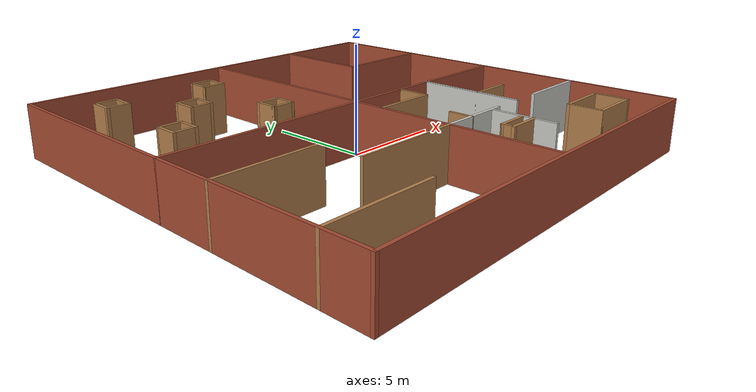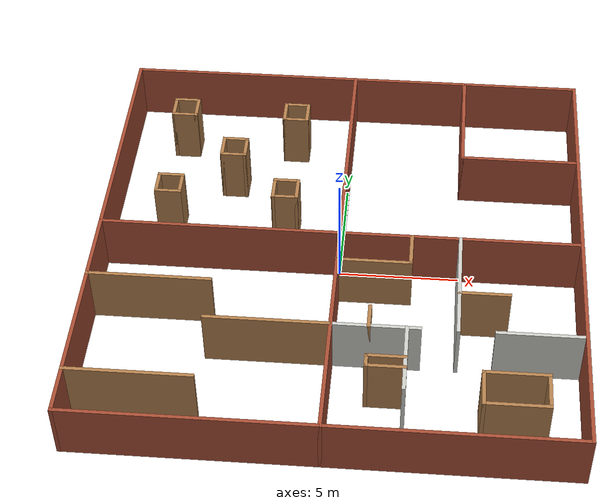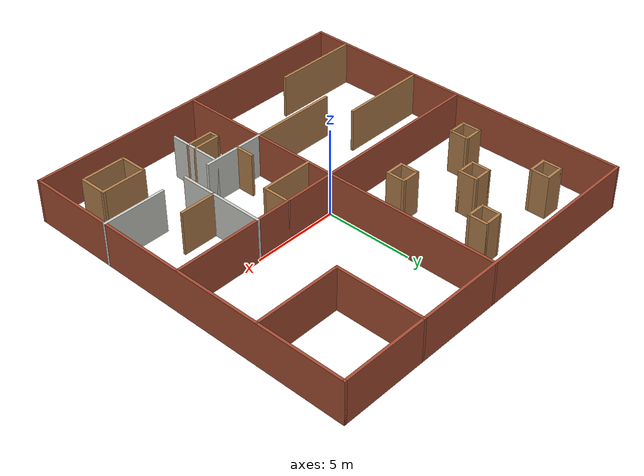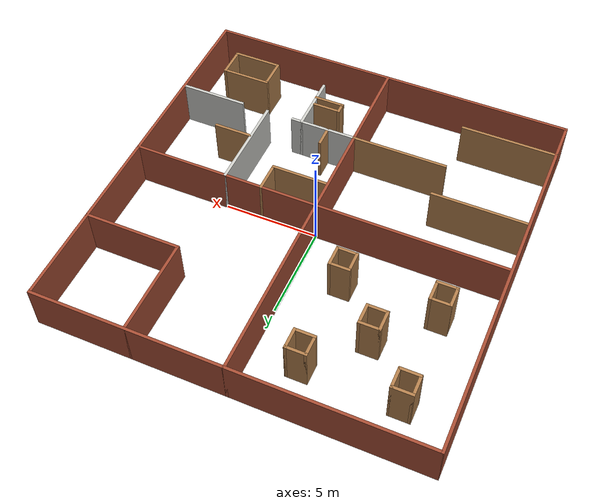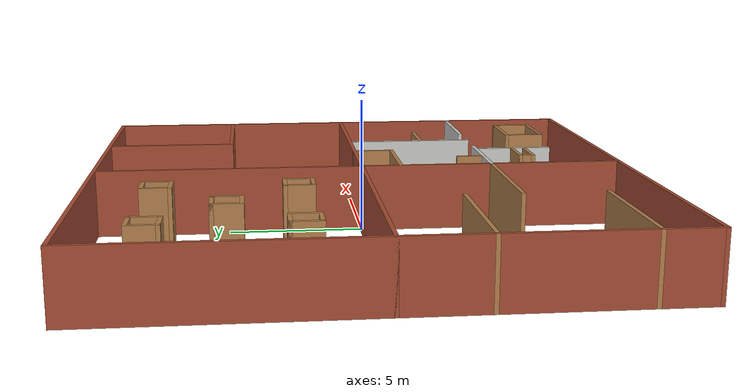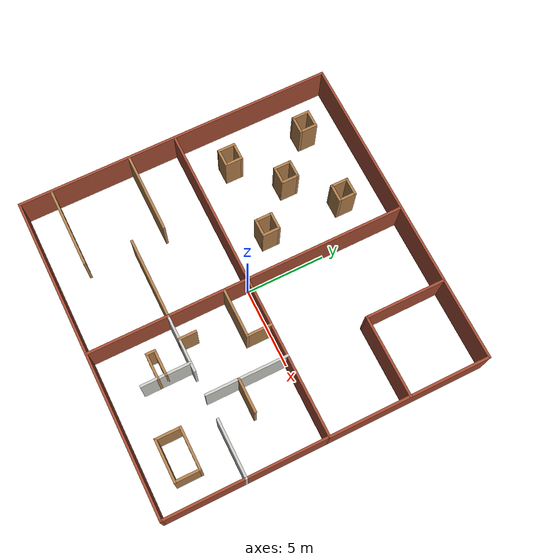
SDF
<?xml version='1.0'?>
<sdf version='1.6'>
  <model name='Room_Curriculum'>
    <pose frame=''>0 0 0 0 -0 0</pose>
    <link name='Wall_0'>
      <collision name='Wall_0_Collision'>
        <geometry>
          <box>
            <size>20.15 0.15 2.5</size>
          </box>
        </geometry>
        <pose frame=''>0 0 1.25 0 -0 0</pose>
      </collision>
      <visual name='Wall_0_Visual'>
        <pose frame=''>0 0 1.25 0 -0 0</pose>
        <geometry>
          <box>
            <size>20.15 0.15 2.5</size>
          </box>
        </geometry>
        <material>
          <script>
            <uri>file://media/materials/scripts/gazebo.material</uri>
            <name>Gazebo/Bricks</name>
          </script>
          <ambient>1 1 1 1</ambient>
        </material>
        <meta>
          <layer>0</layer>
        </meta>
      </visual>
      <pose frame=''>0 10 0 0 -0 0</pose>
    </link>
    <link name='Wall_1'>
      <collision name='Wall_1_Collision'>
        <geometry>
          <box>
            <size>20.15 0.15 2.5</size>
          </box>
        </geometry>
        <pose frame=''>0 0 1.25 0 -0 0</pose>
      </collision>
      <visual name='Wall_1_Visual'>
        <pose frame=''>0 0 1.25 0 -0 0</pose>
        <geometry>
          <box>
            <size>20.15 0.15 2.5</size>
          </box>
        </geometry>
        <material>
          <script>
            <uri>file://media/materials/scripts/gazebo.material</uri>
            <name>Gazebo/Bricks</name>
          </script>
          <ambient>1 1 1 1</ambient>
        </material>
        <meta>
          <layer>0</layer>
        </meta>
      </visual>
      <pose frame=''>10 0 0 0 0 -1.5708</pose>
    </link>
    <link name='Wall_15'>
      <collision name='Wall_15_Collision'>
        <geometry>
          <box>
            <size>5.15 0.15 2.5</size>
          </box>
        </geometry>
        <pose frame=''>0 0 1.25 0 -0 0</pose>
      </collision>
      <visual name='Wall_15_Visual'>
        <pose frame=''>0 0 1.25 0 -0 0</pose>
        <geometry>
          <box>
            <size>5.15 0.15 2.5</size>
          </box>
        </geometry>
        <material>
          <script>
            <uri>file://media/materials/scripts/gazebo.material</uri>
            <name>Gazebo/Bricks</name>
          </script>
          <ambient>1 1 1 1</ambient>
        </material>
        <meta>
          <layer>0</layer>
        </meta>
      </visual>
      <pose frame=''>5 7.5 0 0 0 -1.5708</pose>
    </link>
    <link name='Wall_16'>
      <collision name='Wall_16_Collision'>
        <geometry>
          <box>
            <size>5.15 0.15 2.5</size>
          </box>
        </geometry>
        <pose frame=''>0 0 1.25 0 -0 0</pose>
      </collision>
      <visual name='Wall_16_Visual'>
        <pose frame=''>0 0 1.25 0 -0 0</pose>
        <geometry>
          <box>
            <size>5.15 0.15 2.5</size>
          </box>
        </geometry>
        <material>
          <script>
            <uri>file://media/materials/scripts/gazebo.material</uri>
            <name>Gazebo/Bricks</name>
          </script>
          <ambient>1 1 1 1</ambient>
        </material>
        <meta>
          <layer>0</layer>
        </meta>
      </visual>
      <pose frame=''>7.5 5 0 0 -0 0</pose>
    </link>
    <link name='Wall_18'>
      <collision name='Wall_18_Collision'>
        <geometry>
          <box>
            <size>1.15 0.15 2.5</size>
          </box>
        </geometry>
        <pose frame=''>0 0 1.25 0 -0 0</pose>
      </collision>
      <visual name='Wall_18_Visual'>
        <pose frame=''>0 0 1.25 0 -0 0</pose>
        <geometry>
          <box>
            <size>1.15 0.15 2.5</size>
          </box>
        </geometry>
        <material>
          <script>
            <uri>file://media/materials/scripts/gazebo.material</uri>
            <name>Gazebo/Wood</name>
          </script>
          <ambient>1 1 1 1</ambient>
        </material>
        <meta>
          <layer>0</layer>
        </meta>
      </visual>
      <pose frame=''>-7.5 8 0 0 -0 0</pose>
    </link>
    <link name='Wall_19'>
      <collision name='Wall_19_Collision'>
        <geometry>
          <box>
            <size>1.15 0.15 2.5</size>
          </box>
        </geometry>
        <pose frame=''>0 0 1.25 0 -0 0</pose>
      </collision>
      <visual name='Wall_19_Visual'>
        <pose frame=''>0 0 1.25 0 -0 0</pose>
        <geometry>
          <box>
            <size>1.15 0.15 2.5</size>
          </box>
        </geometry>
        <material>
          <script>
            <uri>file://media/materials/scripts/gazebo.material</uri>
            <name>Gazebo/Wood</name>
          </script>
          <ambient>1 1 1 1</ambient>
        </material>
        <meta>
          <layer>0</layer>
        </meta>
      </visual>
      <pose frame=''>-7 7.5 0 0 0 -1.5708</pose>
    </link>
    <link name='Wall_2'>
      <collision name='Wall_2_Collision'>
        <geometry>
          <box>
            <size>20.15 0.15 2.5</size>
          </box>
        </geometry>
        <pose frame=''>0 0 1.25 0 -0 0</pose>
      </collision>
      <visual name='Wall_2_Visual'>
        <pose frame=''>0 0 1.25 0 -0 0</pose>
        <geometry>
          <box>
            <size>20.15 0.15 2.5</size>
          </box>
        </geometry>
        <material>
          <script>
            <uri>file://media/materials/scripts/gazebo.material</uri>
            <name>Gazebo/Bricks</name>
          </script>
          <ambient>1 1 1 1</ambient>
        </material>
        <meta>
          <layer>0</layer>
        </meta>
      </visual>
      <pose frame=''>0 -10 0 0 -0 3.14159</pose>
    </link>
    <link name='Wall_20'>
      <collision name='Wall_20_Collision'>
        <geometry>
          <box>
            <size>1.15 0.15 2.5</size>
          </box>
        </geometry>
        <pose frame=''>0 0 1.25 0 -0 0</pose>
      </collision>
      <visual name='Wall_20_Visual'>
        <pose frame=''>0 0 1.25 0 -0 0</pose>
        <geometry>
          <box>
            <size>1.15 0.15 2.5</size>
          </box>
        </geometry>
        <material>
          <script>
            <uri>file://media/materials/scripts/gazebo.material</uri>
            <name>Gazebo/Wood</name>
          </script>
          <ambient>1 1 1 1</ambient>
        </material>
        <meta>
          <layer>0</layer>
        </meta>
      </visual>
      <pose frame=''>-7.5 7 0 0 -0 3.14159</pose>
    </link>
    <link name='Wall_21'>
      <collision name='Wall_21_Collision'>
        <geometry>
          <box>
            <size>1.15 0.15 2.5</size>
          </box>
        </geometry>
        <pose frame=''>0 0 1.25 0 -0 0</pose>
      </collision>
      <visual name='Wall_21_Visual'>
        <pose frame=''>0 0 1.25 0 -0 0</pose>
        <geometry>
          <box>
            <size>1.15 0.15 2.5</size>
          </box>
        </geometry>
        <material>
          <script>
            <uri>file://media/materials/scripts/gazebo.material</uri>
            <name>Gazebo/Wood</name>
          </script>
          <ambient>1 1 1 1</ambient>
        </material>
        <meta>
          <layer>0</layer>
        </meta>
      </visual>
      <pose frame=''>-8 7.5 0 0 -0 1.5708</pose>
    </link>
    <link name='Wall_23'>
      <collision name='Wall_23_Collision'>
        <geometry>
          <box>
            <size>1.15 0.15 2.5</size>
          </box>
        </geometry>
        <pose frame=''>0 0 1.25 0 -0 0</pose>
      </collision>
      <visual name='Wall_23_Visual'>
        <pose frame=''>0 0 1.25 0 -0 0</pose>
        <geometry>
          <box>
            <size>1.15 0.15 2.5</size>
          </box>
        </geometry>
        <material>
          <script>
            <uri>file://media/materials/scripts/gazebo.material</uri>
            <name>Gazebo/Wood</name>
          </script>
          <ambient>1 1 1 1</ambient>
        </material>
        <meta>
          <layer>0</layer>
        </meta>
      </visual>
      <pose frame=''>-5.5 5 0 0 0 -1.5708</pose>
    </link>
    <link name='Wall_24'>
      <collision name='Wall_24_Collision'>
        <geometry>
          <box>
            <size>1.15 0.15 2.5</size>
          </box>
        </geometry>
        <pose frame=''>0 0 1.25 0 -0 0</pose>
      </collision>
      <visual name='Wall_24_Visual'>
        <pose frame=''>0 0 1.25 0 -0 0</pose>
        <geometry>
          <box>
            <size>1.15 0.15 2.5</size>
          </box>
        </geometry>
        <material>
          <script>
            <uri>file://media/materials/scripts/gazebo.material</uri>
            <name>Gazebo/Wood</name>
          </script>
          <ambient>1 1 1 1</ambient>
        </material>
        <meta>
          <layer>0</layer>
        </meta>
      </visual>
      <pose frame=''>-5 4.5 0 0 -0 0</pose>
    </link>
    <link name='Wall_25'>
      <collision name='Wall_25_Collision'>
        <geometry>
          <box>
            <size>1.15 0.15 2.5</size>
          </box>
        </geometry>
        <pose frame=''>0 0 1.25 0 -0 0</pose>
      </collision>
      <visual name='Wall_25_Visual'>
        <pose frame=''>0 0 1.25 0 -0 0</pose>
        <geometry>
          <box>
            <size>1.15 0.15 2.5</size>
          </box>
        </geometry>
        <material>
          <script>
            <uri>file://media/materials/scripts/gazebo.material</uri>
            <name>Gazebo/Wood</name>
          </script>
          <ambient>1 1 1 1</ambient>
        </material>
        <meta>
          <layer>0</layer>
        </meta>
      </visual>
      <pose frame=''>-4.5 5 0 0 -0 1.5708</pose>
    </link>
    <link name='Wall_26'>
      <collision name='Wall_26_Collision'>
        <geometry>
          <box>
            <size>1.15 0.15 2.5</size>
          </box>
        </geometry>
        <pose frame=''>0 0 1.25 0 -0 0</pose>
      </collision>
      <visual name='Wall_26_Visual'>
        <pose frame=''>0 0 1.25 0 -0 0</pose>
        <geometry>
          <box>
            <size>1.15 0.15 2.5</size>
          </box>
        </geometry>
        <material>
          <script>
            <uri>file://media/materials/scripts/gazebo.material</uri>
            <name>Gazebo/Wood</name>
          </script>
          <ambient>1 1 1 1</ambient>
        </material>
        <meta>
          <layer>0</layer>
        </meta>
      </visual>
      <pose frame=''>-5 5.5 0 0 -0 3.14159</pose>
    </link>
    <link name='Wall_28'>
      <collision name='Wall_28_Collision'>
        <geometry>
          <box>
            <size>1.15 0.15 2.5</size>
          </box>
        </geometry>
        <pose frame=''>0 0 1.25 0 -0 0</pose>
      </collision>
      <visual name='Wall_28_Visual'>
        <pose frame=''>0 0 1.25 0 -0 0</pose>
        <geometry>
          <box>
            <size>1.15 0.15 2.5</size>
          </box>
        </geometry>
        <material>
          <script>
            <uri>file://media/materials/scripts/gazebo.material</uri>
            <name>Gazebo/Wood</name>
          </script>
          <ambient>1 1 1 1</ambient>
        </material>
        <meta>
          <layer>0</layer>
        </meta>
      </visual>
      <pose frame=''>-2.5 8 0 0 -0 0</pose>
    </link>
    <link name='Wall_29'>
      <collision name='Wall_29_Collision'>
        <geometry>
          <box>
            <size>1.15 0.15 2.5</size>
          </box>
        </geometry>
        <pose frame=''>0 0 1.25 0 -0 0</pose>
      </collision>
      <visual name='Wall_29_Visual'>
        <pose frame=''>0 0 1.25 0 -0 0</pose>
        <geometry>
          <box>
            <size>1.15 0.15 2.5</size>
          </box>
        </geometry>
        <material>
          <script>
            <uri>file://media/materials/scripts/gazebo.material</uri>
            <name>Gazebo/Wood</name>
          </script>
          <ambient>1 1 1 1</ambient>
        </material>
        <meta>
          <layer>0</layer>
        </meta>
      </visual>
      <pose frame=''>-2 7.5 0 0 0 -1.5708</pose>
    </link>
    <link name='Wall_3'>
      <collision name='Wall_3_Collision'>
        <geometry>
          <box>
            <size>20.15 0.15 2.5</size>
          </box>
        </geometry>
        <pose frame=''>0 0 1.25 0 -0 0</pose>
      </collision>
      <visual name='Wall_3_Visual'>
        <pose frame=''>0 0 1.25 0 -0 0</pose>
        <geometry>
          <box>
            <size>20.15 0.15 2.5</size>
          </box>
        </geometry>
        <material>
          <script>
            <uri>file://media/materials/scripts/gazebo.material</uri>
            <name>Gazebo/Bricks</name>
          </script>
          <ambient>1 1 1 1</ambient>
        </material>
        <meta>
          <layer>0</layer>
        </meta>
      </visual>
      <pose frame=''>-10 0 0 0 -0 1.5708</pose>
    </link>
    <link name='Wall_30'>
      <collision name='Wall_30_Collision'>
        <geometry>
          <box>
            <size>1.15 0.15 2.5</size>
          </box>
        </geometry>
        <pose frame=''>0 0 1.25 0 -0 0</pose>
      </collision>
      <visual name='Wall_30_Visual'>
        <pose frame=''>0 0 1.25 0 -0 0</pose>
        <geometry>
          <box>
            <size>1.15 0.15 2.5</size>
          </box>
        </geometry>
        <material>
          <script>
            <uri>file://media/materials/scripts/gazebo.material</uri>
            <name>Gazebo/Wood</name>
          </script>
          <ambient>1 1 1 1</ambient>
        </material>
        <meta>
          <layer>0</layer>
        </meta>
      </visual>
      <pose frame=''>-2.5 7 0 0 -0 3.14159</pose>
    </link>
    <link name='Wall_31'>
      <collision name='Wall_31_Collision'>
        <geometry>
          <box>
            <size>1.15 0.15 2.5</size>
          </box>
        </geometry>
        <pose frame=''>0 0 1.25 0 -0 0</pose>
      </collision>
      <visual name='Wall_31_Visual'>
        <pose frame=''>0 0 1.25 0 -0 0</pose>
        <geometry>
          <box>
            <size>1.15 0.15 2.5</size>
          </box>
        </geometry>
        <material>
          <script>
            <uri>file://media/materials/scripts/gazebo.material</uri>
            <name>Gazebo/Wood</name>
          </script>
          <ambient>1 1 1 1</ambient>
        </material>
        <meta>
          <layer>0</layer>
        </meta>
      </visual>
      <pose frame=''>-3 7.5 0 0 -0 1.5708</pose>
    </link>
    <link name='Wall_33'>
      <collision name='Wall_33_Collision'>
        <geometry>
          <box>
            <size>1.15 0.15 2.5</size>
          </box>
        </geometry>
        <pose frame=''>0 0 1.25 0 -0 0</pose>
      </collision>
      <visual name='Wall_33_Visual'>
        <pose frame=''>0 0 1.25 0 -0 0</pose>
        <geometry>
          <box>
            <size>1.15 0.15 2.5</size>
          </box>
        </geometry>
        <material>
          <script>
            <uri>file://media/materials/scripts/gazebo.material</uri>
            <name>Gazebo/Wood</name>
          </script>
          <ambient>1 1 1 1</ambient>
        </material>
        <meta>
          <layer>0</layer>
        </meta>
      </visual>
      <pose frame=''>-8 2.5 0 0 0 -1.5708</pose>
    </link>
    <link name='Wall_34'>
      <collision name='Wall_34_Collision'>
        <geometry>
          <box>
            <size>1.15 0.15 2.5</size>
          </box>
        </geometry>
        <pose frame=''>0 0 1.25 0 -0 0</pose>
      </collision>
      <visual name='Wall_34_Visual'>
        <pose frame=''>0 0 1.25 0 -0 0</pose>
        <geometry>
          <box>
            <size>1.15 0.15 2.5</size>
          </box>
        </geometry>
        <material>
          <script>
            <uri>file://media/materials/scripts/gazebo.material</uri>
            <name>Gazebo/Wood</name>
          </script>
          <ambient>1 1 1 1</ambient>
        </material>
        <meta>
          <layer>0</layer>
        </meta>
      </visual>
      <pose frame=''>-7.5 2 0 0 -0 0</pose>
    </link>
    <link name='Wall_35'>
      <collision name='Wall_35_Collision'>
        <geometry>
          <box>
            <size>1.15 0.15 2.5</size>
          </box>
        </geometry>
        <pose frame=''>0 0 1.25 0 -0 0</pose>
      </collision>
      <visual name='Wall_35_Visual'>
        <pose frame=''>0 0 1.25 0 -0 0</pose>
        <geometry>
          <box>
            <size>1.15 0.15 2.5</size>
          </box>
        </geometry>
        <material>
          <script>
            <uri>file://media/materials/scripts/gazebo.material</uri>
            <name>Gazebo/Wood</name>
          </script>
          <ambient>1 1 1 1</ambient>
        </material>
        <meta>
          <layer>0</layer>
        </meta>
      </visual>
      <pose frame=''>-7 2.5 0 0 -0 1.5708</pose>
    </link>
    <link name='Wall_36'>
      <collision name='Wall_36_Collision'>
        <geometry>
          <box>
            <size>1.15 0.15 2.5</size>
          </box>
        </geometry>
        <pose frame=''>0 0 1.25 0 -0 0</pose>
      </collision>
      <visual name='Wall_36_Visual'>
        <pose frame=''>0 0 1.25 0 -0 0</pose>
        <geometry>
          <box>
            <size>1.15 0.15 2.5</size>
          </box>
        </geometry>
        <material>
          <script>
            <uri>file://media/materials/scripts/gazebo.material</uri>
            <name>Gazebo/Wood</name>
          </script>
          <ambient>1 1 1 1</ambient>
        </material>
        <meta>
          <layer>0</layer>
        </meta>
      </visual>
      <pose frame=''>-7.5 3 0 0 -0 3.14159</pose>
    </link>
    <link name='Wall_38'>
      <collision name='Wall_38_Collision'>
        <geometry>
          <box>
            <size>1.15 0.15 2.5</size>
          </box>
        </geometry>
        <pose frame=''>0 0 1.25 0 -0 0</pose>
      </collision>
      <visual name='Wall_38_Visual'>
        <pose frame=''>0 0 1.25 0 -0 0</pose>
        <geometry>
          <box>
            <size>1.15 0.15 2.5</size>
          </box>
        </geometry>
        <material>
          <script>
            <uri>file://media/materials/scripts/gazebo.material</uri>
            <name>Gazebo/Wood</name>
          </script>
          <ambient>1 1 1 1</ambient>
        </material>
        <meta>
          <layer>0</layer>
        </meta>
      </visual>
      <pose frame=''>-3 2.5 0 0 0 -1.5708</pose>
    </link>
    <link name='Wall_39'>
      <collision name='Wall_39_Collision'>
        <geometry>
          <box>
            <size>1.15 0.15 2.5</size>
          </box>
        </geometry>
        <pose frame=''>0 0 1.25 0 -0 0</pose>
      </collision>
      <visual name='Wall_39_Visual'>
        <pose frame=''>0 0 1.25 0 -0 0</pose>
        <geometry>
          <box>
            <size>1.15 0.15 2.5</size>
          </box>
        </geometry>
        <material>
          <script>
            <uri>file://media/materials/scripts/gazebo.material</uri>
            <name>Gazebo/Wood</name>
          </script>
          <ambient>1 1 1 1</ambient>
        </material>
        <meta>
          <layer>0</layer>
        </meta>
      </visual>
      <pose frame=''>-2.5 2 0 0 -0 0</pose>
    </link>
    <link name='Wall_40'>
      <collision name='Wall_40_Collision'>
        <geometry>
          <box>
            <size>1.15 0.15 2.5</size>
          </box>
        </geometry>
        <pose frame=''>0 0 1.25 0 -0 0</pose>
      </collision>
      <visual name='Wall_40_Visual'>
        <pose frame=''>0 0 1.25 0 -0 0</pose>
        <geometry>
          <box>
            <size>1.15 0.15 2.5</size>
          </box>
        </geometry>
        <material>
          <script>
            <uri>file://media/materials/scripts/gazebo.material</uri>
            <name>Gazebo/Wood</name>
          </script>
          <ambient>1 1 1 1</ambient>
        </material>
        <meta>
          <layer>0</layer>
        </meta>
      </visual>
      <pose frame=''>-2 2.5 0 0 -0 1.5708</pose>
    </link>
    <link name='Wall_41'>
      <collision name='Wall_41_Collision'>
        <geometry>
          <box>
            <size>1.15 0.15 2.5</size>
          </box>
        </geometry>
        <pose frame=''>0 0 1.25 0 -0 0</pose>
      </collision>
      <visual name='Wall_41_Visual'>
        <pose frame=''>0 0 1.25 0 -0 0</pose>
        <geometry>
          <box>
            <size>1.15 0.15 2.5</size>
          </box>
        </geometry>
        <material>
          <script>
            <uri>file://media/materials/scripts/gazebo.material</uri>
            <name>Gazebo/Wood</name>
          </script>
          <ambient>1 1 1 1</ambient>
        </material>
        <meta>
          <layer>0</layer>
        </meta>
      </visual>
      <pose frame=''>-2.5 3 0 0 -0 3.14159</pose>
    </link>
    <link name='Wall_43'>
      <collision name='Wall_43_Collision'>
        <geometry>
          <box>
            <size>5.15 0.15 2.5</size>
          </box>
        </geometry>
        <pose frame=''>0 0 1.25 0 -0 0</pose>
      </collision>
      <visual name='Wall_43_Visual'>
        <pose frame=''>0 0 1.25 0 -0 0</pose>
        <geometry>
          <box>
            <size>5.15 0.15 2.5</size>
          </box>
        </geometry>
        <material>
          <script>
            <uri>file://media/materials/scripts/gazebo.material</uri>
            <name>Gazebo/Wood</name>
          </script>
          <ambient>1 1 1 1</ambient>
        </material>
        <meta>
          <layer>0</layer>
        </meta>
      </visual>
      <pose frame=''>-7.5 -3 0 0 -0 0</pose>
    </link>
    <link name='Wall_45'>
      <collision name='Wall_45_Collision'>
        <geometry>
          <box>
            <size>5.15 0.15 2.5</size>
          </box>
        </geometry>
        <pose frame=''>0 0 1.25 0 -0 0</pose>
      </collision>
      <visual name='Wall_45_Visual'>
        <pose frame=''>0 0 1.25 0 -0 0</pose>
        <geometry>
          <box>
            <size>5.15 0.15 2.5</size>
          </box>
        </geometry>
        <material>
          <script>
            <uri>file://media/materials/scripts/gazebo.material</uri>
            <name>Gazebo/Wood</name>
          </script>
          <ambient>1 1 1 1</ambient>
        </material>
        <meta>
          <layer>0</layer>
        </meta>
      </visual>
      <pose frame=''>-2.5 -5 0 0 -0 3.14159</pose>
    </link>
    <link name='Wall_47'>
      <collision name='Wall_47_Collision'>
        <geometry>
          <box>
            <size>5.15 0.15 2.5</size>
          </box>
        </geometry>
        <pose frame=''>0 0 1.25 0 -0 0</pose>
      </collision>
      <visual name='Wall_47_Visual'>
        <pose frame=''>0 0 1.25 0 -0 0</pose>
        <geometry>
          <box>
            <size>5.15 0.15 2.5</size>
          </box>
        </geometry>
        <material>
          <script>
            <uri>file://media/materials/scripts/gazebo.material</uri>
            <name>Gazebo/Wood</name>
          </script>
          <ambient>1 1 1 1</ambient>
        </material>
        <meta>
          <layer>0</layer>
        </meta>
      </visual>
      <pose frame=''>-7.5 -8 0 0 -0 0</pose>
    </link>
    <link name='Wall_5'>
      <collision name='Wall_5_Collision'>
        <geometry>
          <box>
            <size>20.15 0.15 2.5</size>
          </box>
        </geometry>
        <pose frame=''>0 0 1.25 0 -0 0</pose>
      </collision>
      <visual name='Wall_5_Visual'>
        <pose frame=''>0 0 1.25 0 -0 0</pose>
        <geometry>
          <box>
            <size>20.15 0.15 2.5</size>
          </box>
        </geometry>
        <material>
          <script>
            <uri>file://media/materials/scripts/gazebo.material</uri>
            <name>Gazebo/Bricks</name>
          </script>
          <ambient>1 1 1 1</ambient>
        </material>
        <meta>
          <layer>0</layer>
        </meta>
      </visual>
      <pose frame=''>0 0 0 0 0 -1.5708</pose>
    </link>
    <link name='Wall_52'>
      <collision name='Wall_52_Collision'>
        <geometry>
          <box>
            <size>5.15 0.15 2.5</size>
          </box>
        </geometry>
        <pose frame=''>0 0 1.25 0 -0 0</pose>
      </collision>
      <visual name='Wall_52_Visual'>
        <pose frame=''>0 0 1.25 0 -0 0</pose>
        <geometry>
          <box>
            <size>5.15 0.15 2.5</size>
          </box>
        </geometry>
        <material>
          <script>
            <uri>file://media/materials/scripts/gazebo.material</uri>
            <name>Gazebo/CeilingTiled</name>
          </script>
          <ambient>1 1 1 1</ambient>
        </material>
        <meta>
          <layer>0</layer>
        </meta>
      </visual>
      <pose frame=''>5 -2.5 0 0 0 -1.5708</pose>
    </link>
    <link name='Wall_54'>
      <collision name='Wall_54_Collision'>
        <geometry>
          <box>
            <size>2.15 0.15 2.5</size>
          </box>
        </geometry>
        <pose frame=''>0 0 1.25 0 -0 0</pose>
      </collision>
      <visual name='Wall_54_Visual'>
        <pose frame=''>0 0 1.25 0 -0 0</pose>
        <geometry>
          <box>
            <size>2.15 0.15 2.5</size>
          </box>
        </geometry>
        <material>
          <script>
            <uri>file://media/materials/scripts/gazebo.material</uri>
            <name>Gazebo/Wood</name>
          </script>
          <ambient>1 1 1 1</ambient>
        </material>
        <meta>
          <layer>0</layer>
        </meta>
      </visual>
      <pose frame=''>6 -3 0 0 -0 0</pose>
    </link>
    <link name='Wall_59'>
      <collision name='Wall_59_Collision'>
        <geometry>
          <box>
            <size>3.65 0.15 2.5</size>
          </box>
        </geometry>
        <pose frame=''>0 0 1.25 0 -0 0</pose>
      </collision>
      <visual name='Wall_59_Visual'>
        <pose frame=''>0 0 1.25 0 -0 0</pose>
        <geometry>
          <box>
            <size>3.65 0.15 2.5</size>
          </box>
        </geometry>
        <material>
          <script>
            <uri>file://media/materials/scripts/gazebo.material</uri>
            <name>Gazebo/CeilingTiled</name>
          </script>
          <ambient>1 1 1 1</ambient>
        </material>
        <meta>
          <layer>0</layer>
        </meta>
      </visual>
      <pose frame=''>1.75 -5 0 0 -0 0</pose>
    </link>
    <link name='Wall_61'>
      <collision name='Wall_61_Collision'>
        <geometry>
          <box>
            <size>3.65 0.15 2.5</size>
          </box>
        </geometry>
        <pose frame=''>0 0 1.25 0 -0 0</pose>
      </collision>
      <visual name='Wall_61_Visual'>
        <pose frame=''>0 0 1.25 0 -0 0</pose>
        <geometry>
          <box>
            <size>3.65 0.15 2.5</size>
          </box>
        </geometry>
        <material>
          <script>
            <uri>file://media/materials/scripts/gazebo.material</uri>
            <name>Gazebo/CeilingTiled</name>
          </script>
          <ambient>1 1 1 1</ambient>
        </material>
        <meta>
          <layer>0</layer>
        </meta>
      </visual>
      <pose frame=''>8.25 -5 0 0 -0 3.14159</pose>
    </link>
    <link name='Wall_63'>
      <collision name='Wall_63_Collision'>
        <geometry>
          <box>
            <size>1.15 0.15 2.5</size>
          </box>
        </geometry>
        <pose frame=''>0 0 1.25 0 -0 0</pose>
      </collision>
      <visual name='Wall_63_Visual'>
        <pose frame=''>0 0 1.25 0 -0 0</pose>
        <geometry>
          <box>
            <size>1.15 0.15 2.5</size>
          </box>
        </geometry>
        <material>
          <script>
            <uri>file://media/materials/scripts/gazebo.material</uri>
            <name>Gazebo/Wood</name>
          </script>
          <ambient>1 1 1 1</ambient>
        </material>
        <meta>
          <layer>0</layer>
        </meta>
      </visual>
      <pose frame=''>1.5 -4.5 0 0 0 -1.5708</pose>
    </link>
    <link name='Wall_65'>
      <collision name='Wall_65_Collision'>
        <geometry>
          <box>
            <size>3.15 0.15 2.5</size>
          </box>
        </geometry>
        <pose frame=''>0 0 1.25 0 -0 0</pose>
      </collision>
      <visual name='Wall_65_Visual'>
        <pose frame=''>0 0 1.25 0 -0 0</pose>
        <geometry>
          <box>
            <size>3.15 0.15 2.5</size>
          </box>
        </geometry>
        <material>
          <script>
            <uri>file://media/materials/scripts/gazebo.material</uri>
            <name>Gazebo/CeilingTiled</name>
          </script>
          <ambient>1 1 1 1</ambient>
        </material>
        <meta>
          <layer>0</layer>
        </meta>
      </visual>
      <pose frame=''>3 -6.5 0 0 0 -1.5708</pose>
    </link>
    <link name='Wall_67'>
      <collision name='Wall_67_Collision'>
        <geometry>
          <box>
            <size>1.65 0.15 2.5</size>
          </box>
        </geometry>
        <pose frame=''>0 0 1.25 0 -0 0</pose>
      </collision>
      <visual name='Wall_67_Visual'>
        <pose frame=''>0 0 1.25 0 -0 0</pose>
        <geometry>
          <box>
            <size>1.65 0.15 2.5</size>
          </box>
        </geometry>
        <material>
          <script>
            <uri>file://media/materials/scripts/gazebo.material</uri>
            <name>Gazebo/Wood</name>
          </script>
          <ambient>1 1 1 1</ambient>
        </material>
        <meta>
          <layer>0</layer>
        </meta>
      </visual>
      <pose frame=''>2.25 -7 0 0 -0 3.14159</pose>
    </link>
    <link name='Wall_68'>
      <collision name='Wall_68_Collision'>
        <geometry>
          <box>
            <size>0.65 0.15 2.5</size>
          </box>
        </geometry>
        <pose frame=''>0 0 1.25 0 -0 0</pose>
      </collision>
      <visual name='Wall_68_Visual'>
        <pose frame=''>0 0 1.25 0 -0 0</pose>
        <geometry>
          <box>
            <size>0.65 0.15 2.5</size>
          </box>
        </geometry>
        <material>
          <script>
            <uri>file://media/materials/scripts/gazebo.material</uri>
            <name>Gazebo/Wood</name>
          </script>
          <ambient>1 1 1 1</ambient>
        </material>
        <meta>
          <layer>0</layer>
        </meta>
      </visual>
      <pose frame=''>1.5 -6.75 0 0 -0 1.5708</pose>
    </link>
    <link name='Wall_69'>
      <collision name='Wall_69_Collision'>
        <geometry>
          <box>
            <size>1.65 0.15 2.5</size>
          </box>
        </geometry>
        <pose frame=''>0 0 1.25 0 -0 0</pose>
      </collision>
      <visual name='Wall_69_Visual'>
        <pose frame=''>0 0 1.25 0 -0 0</pose>
        <geometry>
          <box>
            <size>1.65 0.15 2.5</size>
          </box>
        </geometry>
        <material>
          <script>
            <uri>file://media/materials/scripts/gazebo.material</uri>
            <name>Gazebo/Wood</name>
          </script>
          <ambient>1 1 1 1</ambient>
        </material>
        <meta>
          <layer>0</layer>
        </meta>
      </visual>
      <pose frame=''>2.25 -6.5 0 0 -0 0</pose>
    </link>
    <link name='Wall_7'>
      <collision name='Wall_7_Collision'>
        <geometry>
          <box>
            <size>20.15 0.15 2.5</size>
          </box>
        </geometry>
        <pose frame=''>0 0 1.25 0 -0 0</pose>
      </collision>
      <visual name='Wall_7_Visual'>
        <pose frame=''>0 0 1.25 0 -0 0</pose>
        <geometry>
          <box>
            <size>20.15 0.15 2.5</size>
          </box>
        </geometry>
        <material>
          <script>
            <uri>file://media/materials/scripts/gazebo.material</uri>
            <name>Gazebo/Bricks</name>
          </script>
          <ambient>1 1 1 1</ambient>
        </material>
        <meta>
          <layer>0</layer>
        </meta>
      </visual>
      <pose frame=''>0 0 0 0 -0 0</pose>
    </link>
    <link name='Wall_71'>
      <collision name='Wall_71_Collision'>
        <geometry>
          <box>
            <size>1.65 0.15 2.5</size>
          </box>
        </geometry>
        <pose frame=''>0 0 1.25 0 -0 0</pose>
      </collision>
      <visual name='Wall_71_Visual'>
        <pose frame=''>0 0 1.25 0 -0 0</pose>
        <geometry>
          <box>
            <size>1.65 0.15 2.5</size>
          </box>
        </geometry>
        <material>
          <script>
            <uri>file://media/materials/scripts/gazebo.material</uri>
            <name>Gazebo/Wood</name>
          </script>
          <ambient>1 1 1 1</ambient>
        </material>
        <meta>
          <layer>0</layer>
        </meta>
      </visual>
      <pose frame=''>6 -7.75 0 0 0 -1.5708</pose>
    </link>
    <link name='Wall_72'>
      <collision name='Wall_72_Collision'>
        <geometry>
          <box>
            <size>2.65 0.15 2.5</size>
          </box>
        </geometry>
        <pose frame=''>0 0 1.25 0 -0 0</pose>
      </collision>
      <visual name='Wall_72_Visual'>
        <pose frame=''>0 0 1.25 0 -0 0</pose>
        <geometry>
          <box>
            <size>2.65 0.15 2.5</size>
          </box>
        </geometry>
        <material>
          <script>
            <uri>file://media/materials/scripts/gazebo.material</uri>
            <name>Gazebo/Wood</name>
          </script>
          <ambient>1 1 1 1</ambient>
        </material>
        <meta>
          <layer>0</layer>
        </meta>
      </visual>
      <pose frame=''>7.25 -8.5 0 0 -0 0</pose>
    </link>
    <link name='Wall_73'>
      <collision name='Wall_73_Collision'>
        <geometry>
          <box>
            <size>1.65 0.15 2.5</size>
          </box>
        </geometry>
        <pose frame=''>0 0 1.25 0 -0 0</pose>
      </collision>
      <visual name='Wall_73_Visual'>
        <pose frame=''>0 0 1.25 0 -0 0</pose>
        <geometry>
          <box>
            <size>1.65 0.15 2.5</size>
          </box>
        </geometry>
        <material>
          <script>
            <uri>file://media/materials/scripts/gazebo.material</uri>
            <name>Gazebo/Wood</name>
          </script>
          <ambient>1 1 1 1</ambient>
        </material>
        <meta>
          <layer>0</layer>
        </meta>
      </visual>
      <pose frame=''>8.5 -7.75 0 0 -0 1.5708</pose>
    </link>
    <link name='Wall_74'>
      <collision name='Wall_74_Collision'>
        <geometry>
          <box>
            <size>2.65 0.15 2.5</size>
          </box>
        </geometry>
        <pose frame=''>0 0 1.25 0 -0 0</pose>
      </collision>
      <visual name='Wall_74_Visual'>
        <pose frame=''>0 0 1.25 0 -0 0</pose>
        <geometry>
          <box>
            <size>2.65 0.15 2.5</size>
          </box>
        </geometry>
        <material>
          <script>
            <uri>file://media/materials/scripts/gazebo.material</uri>
            <name>Gazebo/Wood</name>
          </script>
          <ambient>1 1 1 1</ambient>
        </material>
        <meta>
          <layer>0</layer>
        </meta>
      </visual>
      <pose frame=''>7.25 -7 0 0 -0 3.14159</pose>
    </link>
    <link name='Wall_76'>
      <collision name='Wall_76_Collision'>
        <geometry>
          <box>
            <size>1.65 0.15 2.5</size>
          </box>
        </geometry>
        <pose frame=''>0 0 1.25 0 -0 0</pose>
      </collision>
      <visual name='Wall_76_Visual'>
        <pose frame=''>0 0 1.25 0 -0 0</pose>
        <geometry>
          <box>
            <size>1.65 0.15 2.5</size>
          </box>
        </geometry>
        <material>
          <script>
            <uri>file://media/materials/scripts/gazebo.material</uri>
            <name>Gazebo/Wood</name>
          </script>
          <ambient>1 1 1 1</ambient>
        </material>
        <meta>
          <layer>0</layer>
        </meta>
      </visual>
      <pose frame=''>3 -0.75 0 0 0 -1.5708</pose>
    </link>
    <link name='Wall_77'>
      <collision name='Wall_77_Collision'>
        <geometry>
          <box>
            <size>3.15 0.15 2.5</size>
          </box>
        </geometry>
        <pose frame=''>0 0 1.25 0 -0 0</pose>
      </collision>
      <visual name='Wall_77_Visual'>
        <pose frame=''>0 0 1.25 0 -0 0</pose>
        <geometry>
          <box>
            <size>3.15 0.15 2.5</size>
          </box>
        </geometry>
        <material>
          <script>
            <uri>file://media/materials/scripts/gazebo.material</uri>
            <name>Gazebo/Wood</name>
          </script>
          <ambient>1 1 1 1</ambient>
        </material>
        <meta>
          <layer>0</layer>
        </meta>
      </visual>
      <pose frame=''>1.5 -1.5 0 0 -0 3.14159</pose>
    </link>
    <static>1</static>
  </model>
</sdf>
